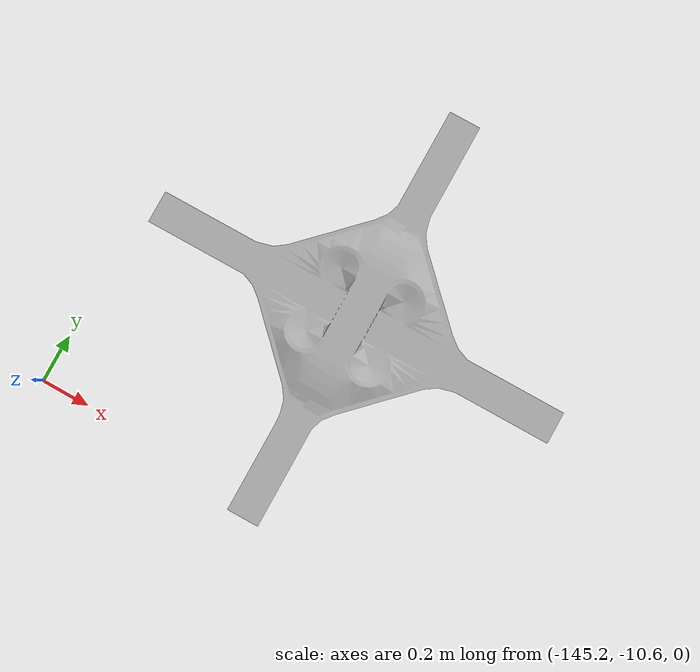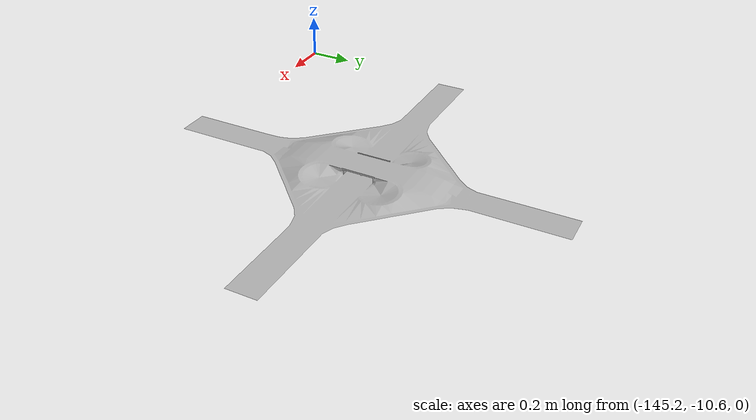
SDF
<sdf version="1.7">
 <world name="default">
  <light name="sun" type="directional">
   <pose>0 0 10 0 -0 0</pose>
   <diffuse>0.8 0.8 0.8 1</diffuse>
   <specular>0.2 0.2 0.2 1</specular>
   <attenuation>
    <range>1000</range>
    <constant>0.9</constant>
    <linear>0.01</linear>
    <quadratic>0.001</quadratic>
   </attenuation>
   <direction>-0.5 0.1 -0.9</direction>
   <spot><inner_angle>0</inner_angle><outer_angle>0</outer_angle><falloff>0</falloff></spot>
  </light>
  <gravity>0 0 -9.8</gravity>
  <magnetic_field>6e-06 2.3e-05 -4.2e-05</magnetic_field>
  <atmosphere type="adiabatic"/>
  <physics name="default_physics" default="0" type="ode">
   <max_step_size>0.001</max_step_size>
   <real_time_factor>1</real_time_factor>
   <real_time_update_rate>1000</real_time_update_rate>
  </physics>
  <scene><ambient>0.4 0.4 0.4 1</ambient><background>0.7 0.7 0.7 1</background><shadows>1</shadows></scene>
  <spherical_coordinates>
   <surface_model>EARTH_WGS84</surface_model>
   <latitude_deg>0</latitude_deg>
   <longitude_deg>0</longitude_deg>
   <elevation>0</elevation>
   <heading_deg>0</heading_deg>
  </spherical_coordinates>
  <model name="heron_cones_use_case">
   <model name="cloverleaf_interchange">
    <static>1</static>
    <link name="link">
     <collision name="collision">
      <geometry>
       <mesh><uri>model://cloverleaf_interchange/meshes/cloverleaf.obj</uri><scale>0.05 0.05 0.05</scale></mesh>
      </geometry>
     </collision>
     <visual name="visual">
      <geometry>
       <mesh><uri>model://cloverleaf_interchange/meshes/cloverleaf.obj</uri><scale>0.05 0.05 0.05</scale></mesh>
      </geometry>
     </visual>
    </link>
    <pose>-115.619 -7.34125 0 0 -0 0</pose>
   </model>
   <static>0</static>
   <pose>-28.6042 -1.87986 0.01 0 -0 0</pose>
  </model>
  <model name="ground_plane">
   <static>1</static>
   <link name="link">
    <collision name="collision">
     <geometry><plane><normal>0 0 1</normal><size>600 600</size></plane></geometry>
     <surface>
      <contact><collide_bitmask>65535</collide_bitmask></contact>
      <friction><ode><mu>100</mu><mu2>50</mu2></ode></friction>
     </surface>
    </collision>
   </link>
  </model>
 </world>
</sdf>
